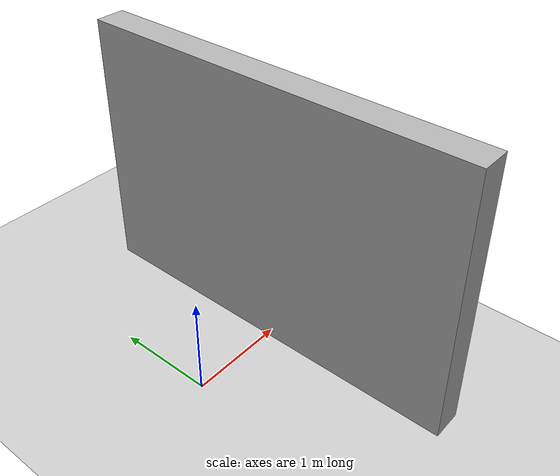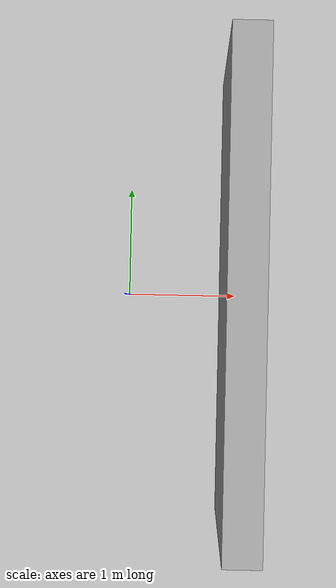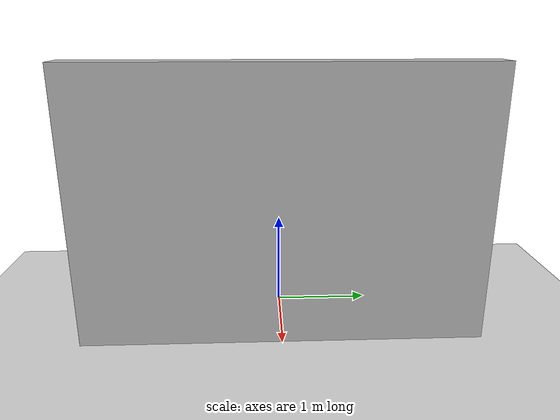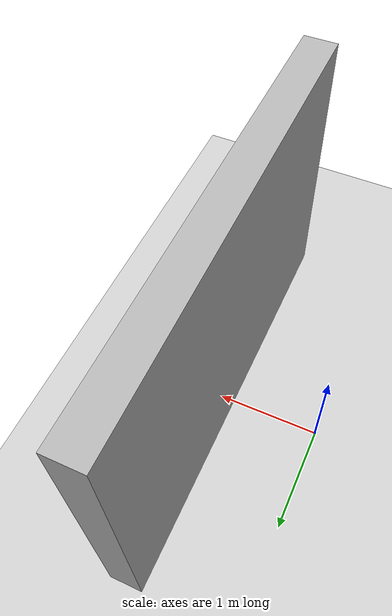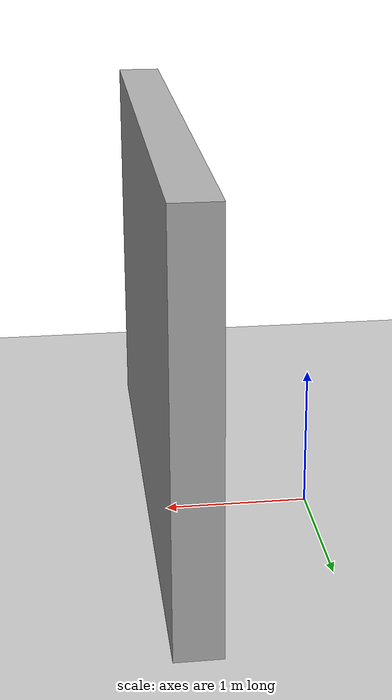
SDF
<?xml version="1.0" encoding="UTF-8"?>
<sdf version="1.9">
  <world name="single_wall">
    <physics type="ode">
      <max_step_size>0.004</max_step_size>
      <real_time_factor>1.0</real_time_factor>
      <real_time_update_rate>250</real_time_update_rate>
    </physics>
    <gravity>0 0 -9.8</gravity>
    <magnetic_field>6e-06 2.3e-05 -4.2e-05</magnetic_field>
    <atmosphere type="adiabatic"/>
    <scene>
      <grid>false</grid>
      <ambient>0.4 0.4 0.4 1</ambient>
      <background>0.7 0.7 0.7 1</background>
      <shadows>true</shadows>
    </scene>
    <model name="ground_plane">
      <static>true</static>
      <link name="link">
        <collision name="collision">
          <geometry>
            <plane>
              <normal>0 0 1</normal>
              <size>1 1</size>
            </plane>
          </geometry>
          <surface>
            <friction>
              <ode/>
            </friction>
            <bounce/>
            <contact/>
          </surface>
        </collision>
        <visual name="visual">
          <geometry>
            <plane>
              <normal>0 0 1</normal>
              <size>100 100</size>
            </plane>
          </geometry>
          <material>
            <ambient>0.8 0.8 0.8 1</ambient>
            <diffuse>0.8 0.8 0.8 1</diffuse>
            <specular>0.8 0.8 0.8 1</specular>
          </material>
        </visual>
      </link>
    </model>
    <light name="sunUTC" type="directional">
      <pose>0 0 500 0 0 0</pose>
      <cast_shadows>true</cast_shadows>
      <intensity>1</intensity>
      <direction>0.001 0.625 -0.78</direction>
      <diffuse>0.904 0.904 0.904 1</diffuse>
      <specular>0.271 0.271 0.271 1</specular>
      <attenuation>
        <range>2000</range>
        <linear>0</linear>
        <constant>1</constant>
        <quadratic>0</quadratic>
      </attenuation>
    </light>
    <spherical_coordinates>
      <surface_model>EARTH_WGS84</surface_model>
      <world_frame_orientation>ENU</world_frame_orientation>
      <latitude_deg>47.397971057728974</latitude_deg>
      <longitude_deg>8.546163739800146</longitude_deg>
      <elevation>0</elevation>
    </spherical_coordinates>
    <model name="single_wall">
      <pose>1 0 1.45 0 0 0</pose>
      <static>true</static>
      <link name="link">
        <collision name="collision">
          <geometry>
            <box>
              <size>0.3 4.0 2.7</size>
            </box>
          </geometry>
        </collision>
        <visual name="visual">
          <geometry>
            <box>
              <size>0.3 4.0 2.7</size>
            </box>
          </geometry>
          <material>
            <ambient>0.3 0.3 0.3 1</ambient>
            <diffuse>0.7 0.7 0.7 1</diffuse>
            <specular>1 1 1 1</specular>
          </material>
        </visual>
      </link>
    </model>
  </world>
</sdf>
